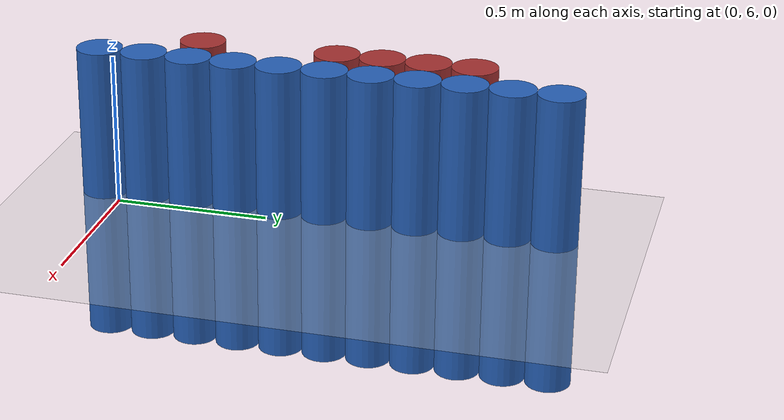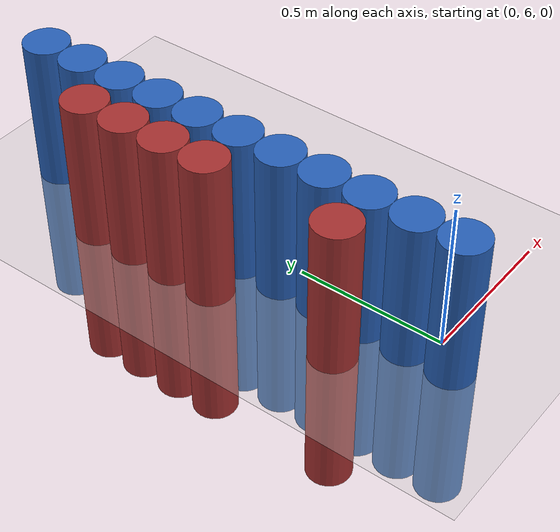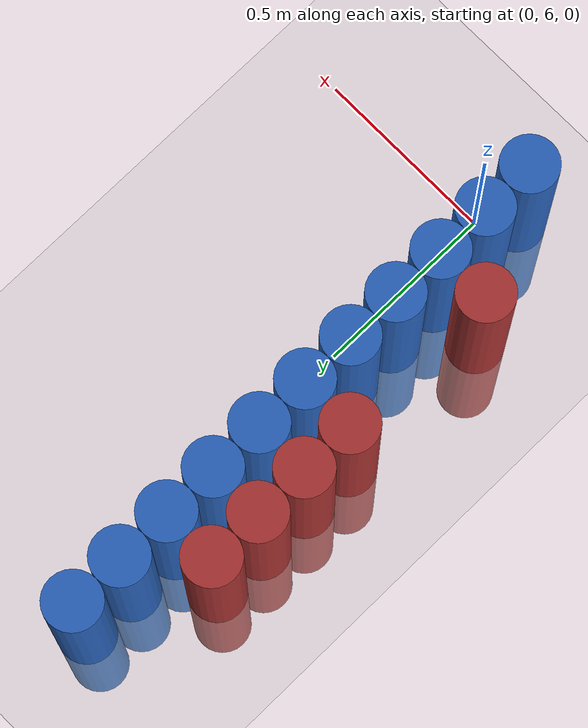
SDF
<sdf version="1.6">
 <world name="default">
  <model name="ground_plane">
   <static>1</static>
   <link name="link">
    <collision name="collision">
     <geometry><plane><normal>0 0 1</normal><size>100 100</size></plane></geometry>
     <surface><friction><ode><mu>100</mu><mu2>50</mu2></ode></friction></surface>
    </collision>
    <visual name="visual">
     <cast_shadows>0</cast_shadows>
     <geometry><plane><normal>0 0 1</normal><size>100 100</size></plane></geometry>
     <material>
      <script><uri>file://media/materials/scripts/gazebo.material</uri><name>Gazebo/Grey</name></script>
     </material>
    </visual>
   </link>
  </model>
  <model name="unit_cylinder_208">
   <static>1</static>
   <pose>-0.225000 6.225000 0.000000 0.000000 0.000000 0.000000</pose>
   <link name="link">
    <inertial>
     <mass>1</mass>
     <inertia><ixx>0.145833</ixx><ixy>0</ixy><ixz>0</ixz><iyy>0.145833</iyy><iyz>0</iyz><izz>0.125</izz></inertia>
    </inertial>
    <collision name="collision">
     <geometry><cylinder><radius>0.075000</radius><length>1</length></cylinder></geometry>
    </collision>
    <visual name="visual">
     <geometry><cylinder><radius>0.075000</radius><length>1</length></cylinder></geometry>
     <material>
      <ambient>0.648000 0.192000 0.192000 1</ambient>
      <diffuse>0.648000 0.192000 0.192000 1</diffuse>
     </material>
     <material>
      <script><name>Gazebo/Grey</name><uri>file://media/materials/scripts/gazebo.material</uri></script>
     </material>
    </visual>
   </link>
  </model>
  <model name="unit_cylinder_209">
   <static>1</static>
   <pose>-0.225000 6.675000 0.000000 0.000000 0.000000 0.000000</pose>
   <link name="link">
    <inertial>
     <mass>1</mass>
     <inertia><ixx>0.145833</ixx><ixy>0</ixy><ixz>0</ixz><iyy>0.145833</iyy><iyz>0</iyz><izz>0.125</izz></inertia>
    </inertial>
    <collision name="collision">
     <geometry><cylinder><radius>0.075000</radius><length>1</length></cylinder></geometry>
    </collision>
    <visual name="visual">
     <geometry><cylinder><radius>0.075000</radius><length>1</length></cylinder></geometry>
     <material>
      <ambient>0.648000 0.192000 0.192000 1</ambient>
      <diffuse>0.648000 0.192000 0.192000 1</diffuse>
     </material>
     <material>
      <script><name>Gazebo/Grey</name><uri>file://media/materials/scripts/gazebo.material</uri></script>
     </material>
    </visual>
   </link>
  </model>
  <model name="unit_cylinder_210">
   <static>1</static>
   <pose>-0.225000 6.825000 0.000000 0.000000 0.000000 0.000000</pose>
   <link name="link">
    <inertial>
     <mass>1</mass>
     <inertia><ixx>0.145833</ixx><ixy>0</ixy><ixz>0</ixz><iyy>0.145833</iyy><iyz>0</iyz><izz>0.125</izz></inertia>
    </inertial>
    <collision name="collision">
     <geometry><cylinder><radius>0.075000</radius><length>1</length></cylinder></geometry>
    </collision>
    <visual name="visual">
     <geometry><cylinder><radius>0.075000</radius><length>1</length></cylinder></geometry>
     <material>
      <ambient>0.648000 0.192000 0.192000 1</ambient>
      <diffuse>0.648000 0.192000 0.192000 1</diffuse>
     </material>
     <material>
      <script><name>Gazebo/Grey</name><uri>file://media/materials/scripts/gazebo.material</uri></script>
     </material>
    </visual>
   </link>
  </model>
  <model name="unit_cylinder_211">
   <static>1</static>
   <pose>-0.225000 6.975000 0.000000 0.000000 0.000000 0.000000</pose>
   <link name="link">
    <inertial>
     <mass>1</mass>
     <inertia><ixx>0.145833</ixx><ixy>0</ixy><ixz>0</ixz><iyy>0.145833</iyy><iyz>0</iyz><izz>0.125</izz></inertia>
    </inertial>
    <collision name="collision">
     <geometry><cylinder><radius>0.075000</radius><length>1</length></cylinder></geometry>
    </collision>
    <visual name="visual">
     <geometry><cylinder><radius>0.075000</radius><length>1</length></cylinder></geometry>
     <material>
      <ambient>0.648000 0.192000 0.192000 1</ambient>
      <diffuse>0.648000 0.192000 0.192000 1</diffuse>
     </material>
     <material>
      <script><name>Gazebo/Grey</name><uri>file://media/materials/scripts/gazebo.material</uri></script>
     </material>
    </visual>
   </link>
  </model>
  <model name="unit_cylinder_212">
   <static>1</static>
   <pose>-0.225000 7.125000 0.000000 0.000000 0.000000 0.000000</pose>
   <link name="link">
    <inertial>
     <mass>1</mass>
     <inertia><ixx>0.145833</ixx><ixy>0</ixy><ixz>0</ixz><iyy>0.145833</iyy><iyz>0</iyz><izz>0.125</izz></inertia>
    </inertial>
    <collision name="collision">
     <geometry><cylinder><radius>0.075000</radius><length>1</length></cylinder></geometry>
    </collision>
    <visual name="visual">
     <geometry><cylinder><radius>0.075000</radius><length>1</length></cylinder></geometry>
     <material>
      <ambient>0.648000 0.192000 0.192000 1</ambient>
      <diffuse>0.648000 0.192000 0.192000 1</diffuse>
     </material>
     <material>
      <script><name>Gazebo/Grey</name><uri>file://media/materials/scripts/gazebo.material</uri></script>
     </material>
    </visual>
   </link>
  </model>
  <model name="unit_cylinder_220">
   <static>1</static>
   <pose>-0.075000 5.925000 0.000000 0.000000 0.000000 0.000000</pose>
   <link name="link">
    <inertial>
     <mass>1</mass>
     <inertia><ixx>0.145833</ixx><ixy>0</ixy><ixz>0</ixz><iyy>0.145833</iyy><iyz>0</iyz><izz>0.125</izz></inertia>
    </inertial>
    <collision name="collision">
     <geometry><cylinder><radius>0.075000</radius><length>1</length></cylinder></geometry>
    </collision>
    <visual name="visual">
     <geometry><cylinder><radius>0.075000</radius><length>1</length></cylinder></geometry>
     <material>
      <ambient>0.152000 0.379000 0.720000 1</ambient>
      <diffuse>0.152000 0.379000 0.720000 1</diffuse>
     </material>
     <material>
      <script><name>Gazebo/Grey</name><uri>file://media/materials/scripts/gazebo.material</uri></script>
     </material>
    </visual>
   </link>
  </model>
  <model name="unit_cylinder_221">
   <static>1</static>
   <pose>-0.075000 6.075000 0.000000 0.000000 0.000000 0.000000</pose>
   <link name="link">
    <inertial>
     <mass>1</mass>
     <inertia><ixx>0.145833</ixx><ixy>0</ixy><ixz>0</ixz><iyy>0.145833</iyy><iyz>0</iyz><izz>0.125</izz></inertia>
    </inertial>
    <collision name="collision">
     <geometry><cylinder><radius>0.075000</radius><length>1</length></cylinder></geometry>
    </collision>
    <visual name="visual">
     <geometry><cylinder><radius>0.075000</radius><length>1</length></cylinder></geometry>
     <material>
      <ambient>0.152000 0.379000 0.720000 1</ambient>
      <diffuse>0.152000 0.379000 0.720000 1</diffuse>
     </material>
     <material>
      <script><name>Gazebo/Grey</name><uri>file://media/materials/scripts/gazebo.material</uri></script>
     </material>
    </visual>
   </link>
  </model>
  <model name="unit_cylinder_222">
   <static>1</static>
   <pose>-0.075000 6.225000 0.000000 0.000000 0.000000 0.000000</pose>
   <link name="link">
    <inertial>
     <mass>1</mass>
     <inertia><ixx>0.145833</ixx><ixy>0</ixy><ixz>0</ixz><iyy>0.145833</iyy><iyz>0</iyz><izz>0.125</izz></inertia>
    </inertial>
    <collision name="collision">
     <geometry><cylinder><radius>0.075000</radius><length>1</length></cylinder></geometry>
    </collision>
    <visual name="visual">
     <geometry><cylinder><radius>0.075000</radius><length>1</length></cylinder></geometry>
     <material>
      <ambient>0.152000 0.379000 0.720000 1</ambient>
      <diffuse>0.152000 0.379000 0.720000 1</diffuse>
     </material>
     <material>
      <script><name>Gazebo/Grey</name><uri>file://media/materials/scripts/gazebo.material</uri></script>
     </material>
    </visual>
   </link>
  </model>
  <model name="unit_cylinder_223">
   <static>1</static>
   <pose>-0.075000 6.375000 0.000000 0.000000 0.000000 0.000000</pose>
   <link name="link">
    <inertial>
     <mass>1</mass>
     <inertia><ixx>0.145833</ixx><ixy>0</ixy><ixz>0</ixz><iyy>0.145833</iyy><iyz>0</iyz><izz>0.125</izz></inertia>
    </inertial>
    <collision name="collision">
     <geometry><cylinder><radius>0.075000</radius><length>1</length></cylinder></geometry>
    </collision>
    <visual name="visual">
     <geometry><cylinder><radius>0.075000</radius><length>1</length></cylinder></geometry>
     <material>
      <ambient>0.152000 0.379000 0.720000 1</ambient>
      <diffuse>0.152000 0.379000 0.720000 1</diffuse>
     </material>
     <material>
      <script><name>Gazebo/Grey</name><uri>file://media/materials/scripts/gazebo.material</uri></script>
     </material>
    </visual>
   </link>
  </model>
  <model name="unit_cylinder_224">
   <static>1</static>
   <pose>-0.075000 6.525000 0.000000 0.000000 0.000000 0.000000</pose>
   <link name="link">
    <inertial>
     <mass>1</mass>
     <inertia><ixx>0.145833</ixx><ixy>0</ixy><ixz>0</ixz><iyy>0.145833</iyy><iyz>0</iyz><izz>0.125</izz></inertia>
    </inertial>
    <collision name="collision">
     <geometry><cylinder><radius>0.075000</radius><length>1</length></cylinder></geometry>
    </collision>
    <visual name="visual">
     <geometry><cylinder><radius>0.075000</radius><length>1</length></cylinder></geometry>
     <material>
      <ambient>0.152000 0.379000 0.720000 1</ambient>
      <diffuse>0.152000 0.379000 0.720000 1</diffuse>
     </material>
     <material>
      <script><name>Gazebo/Grey</name><uri>file://media/materials/scripts/gazebo.material</uri></script>
     </material>
    </visual>
   </link>
  </model>
  <model name="unit_cylinder_225">
   <static>1</static>
   <pose>-0.075000 6.675000 0.000000 0.000000 0.000000 0.000000</pose>
   <link name="link">
    <inertial>
     <mass>1</mass>
     <inertia><ixx>0.145833</ixx><ixy>0</ixy><ixz>0</ixz><iyy>0.145833</iyy><iyz>0</iyz><izz>0.125</izz></inertia>
    </inertial>
    <collision name="collision">
     <geometry><cylinder><radius>0.075000</radius><length>1</length></cylinder></geometry>
    </collision>
    <visual name="visual">
     <geometry><cylinder><radius>0.075000</radius><length>1</length></cylinder></geometry>
     <material>
      <ambient>0.152000 0.379000 0.720000 1</ambient>
      <diffuse>0.152000 0.379000 0.720000 1</diffuse>
     </material>
     <material>
      <script><name>Gazebo/Grey</name><uri>file://media/materials/scripts/gazebo.material</uri></script>
     </material>
    </visual>
   </link>
  </model>
  <model name="unit_cylinder_226">
   <static>1</static>
   <pose>-0.075000 6.825000 0.000000 0.000000 0.000000 0.000000</pose>
   <link name="link">
    <inertial>
     <mass>1</mass>
     <inertia><ixx>0.145833</ixx><ixy>0</ixy><ixz>0</ixz><iyy>0.145833</iyy><iyz>0</iyz><izz>0.125</izz></inertia>
    </inertial>
    <collision name="collision">
     <geometry><cylinder><radius>0.075000</radius><length>1</length></cylinder></geometry>
    </collision>
    <visual name="visual">
     <geometry><cylinder><radius>0.075000</radius><length>1</length></cylinder></geometry>
     <material>
      <ambient>0.152000 0.379000 0.720000 1</ambient>
      <diffuse>0.152000 0.379000 0.720000 1</diffuse>
     </material>
     <material>
      <script><name>Gazebo/Grey</name><uri>file://media/materials/scripts/gazebo.material</uri></script>
     </material>
    </visual>
   </link>
  </model>
  <model name="unit_cylinder_227">
   <static>1</static>
   <pose>-0.075000 6.975000 0.000000 0.000000 0.000000 0.000000</pose>
   <link name="link">
    <inertial>
     <mass>1</mass>
     <inertia><ixx>0.145833</ixx><ixy>0</ixy><ixz>0</ixz><iyy>0.145833</iyy><iyz>0</iyz><izz>0.125</izz></inertia>
    </inertial>
    <collision name="collision">
     <geometry><cylinder><radius>0.075000</radius><length>1</length></cylinder></geometry>
    </collision>
    <visual name="visual">
     <geometry><cylinder><radius>0.075000</radius><length>1</length></cylinder></geometry>
     <material>
      <ambient>0.152000 0.379000 0.720000 1</ambient>
      <diffuse>0.152000 0.379000 0.720000 1</diffuse>
     </material>
     <material>
      <script><name>Gazebo/Grey</name><uri>file://media/materials/scripts/gazebo.material</uri></script>
     </material>
    </visual>
   </link>
  </model>
  <model name="unit_cylinder_228">
   <static>1</static>
   <pose>-0.075000 7.125000 0.000000 0.000000 0.000000 0.000000</pose>
   <link name="link">
    <inertial>
     <mass>1</mass>
     <inertia><ixx>0.145833</ixx><ixy>0</ixy><ixz>0</ixz><iyy>0.145833</iyy><iyz>0</iyz><izz>0.125</izz></inertia>
    </inertial>
    <collision name="collision">
     <geometry><cylinder><radius>0.075000</radius><length>1</length></cylinder></geometry>
    </collision>
    <visual name="visual">
     <geometry><cylinder><radius>0.075000</radius><length>1</length></cylinder></geometry>
     <material>
      <ambient>0.152000 0.379000 0.720000 1</ambient>
      <diffuse>0.152000 0.379000 0.720000 1</diffuse>
     </material>
     <material>
      <script><name>Gazebo/Grey</name><uri>file://media/materials/scripts/gazebo.material</uri></script>
     </material>
    </visual>
   </link>
  </model>
  <model name="unit_cylinder_229">
   <static>1</static>
   <pose>-0.075000 7.275000 0.000000 0.000000 0.000000 0.000000</pose>
   <link name="link">
    <inertial>
     <mass>1</mass>
     <inertia><ixx>0.145833</ixx><ixy>0</ixy><ixz>0</ixz><iyy>0.145833</iyy><iyz>0</iyz><izz>0.125</izz></inertia>
    </inertial>
    <collision name="collision">
     <geometry><cylinder><radius>0.075000</radius><length>1</length></cylinder></geometry>
    </collision>
    <visual name="visual">
     <geometry><cylinder><radius>0.075000</radius><length>1</length></cylinder></geometry>
     <material>
      <ambient>0.152000 0.379000 0.720000 1</ambient>
      <diffuse>0.152000 0.379000 0.720000 1</diffuse>
     </material>
     <material>
      <script><name>Gazebo/Grey</name><uri>file://media/materials/scripts/gazebo.material</uri></script>
     </material>
    </visual>
   </link>
  </model>
  <model name="unit_cylinder_230">
   <static>1</static>
   <pose>-0.075000 7.425000 0.000000 0.000000 0.000000 0.000000</pose>
   <link name="link">
    <inertial>
     <mass>1</mass>
     <inertia><ixx>0.145833</ixx><ixy>0</ixy><ixz>0</ixz><iyy>0.145833</iyy><iyz>0</iyz><izz>0.125</izz></inertia>
    </inertial>
    <collision name="collision">
     <geometry><cylinder><radius>0.075000</radius><length>1</length></cylinder></geometry>
    </collision>
    <visual name="visual">
     <geometry><cylinder><radius>0.075000</radius><length>1</length></cylinder></geometry>
     <material>
      <ambient>0.152000 0.379000 0.720000 1</ambient>
      <diffuse>0.152000 0.379000 0.720000 1</diffuse>
     </material>
     <material>
      <script><name>Gazebo/Grey</name><uri>file://media/materials/scripts/gazebo.material</uri></script>
     </material>
    </visual>
   </link>
  </model>
 </world>
</sdf>
